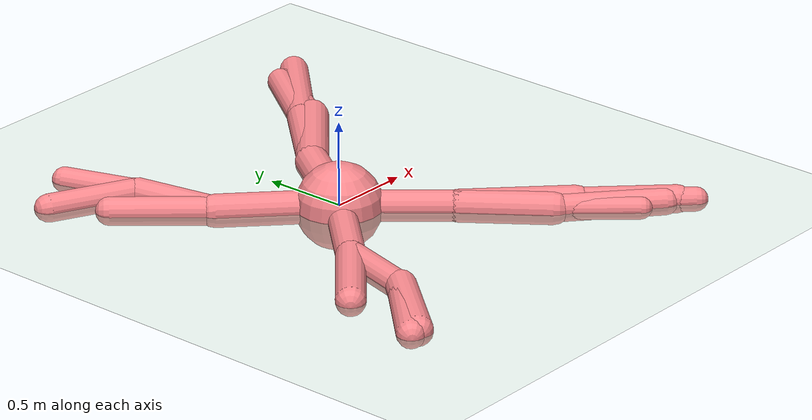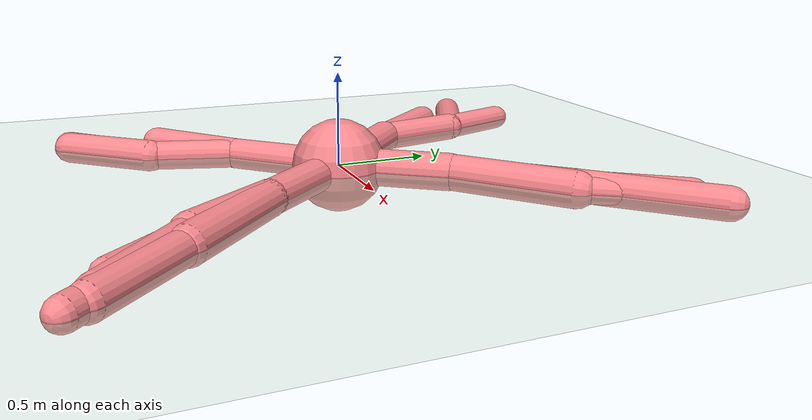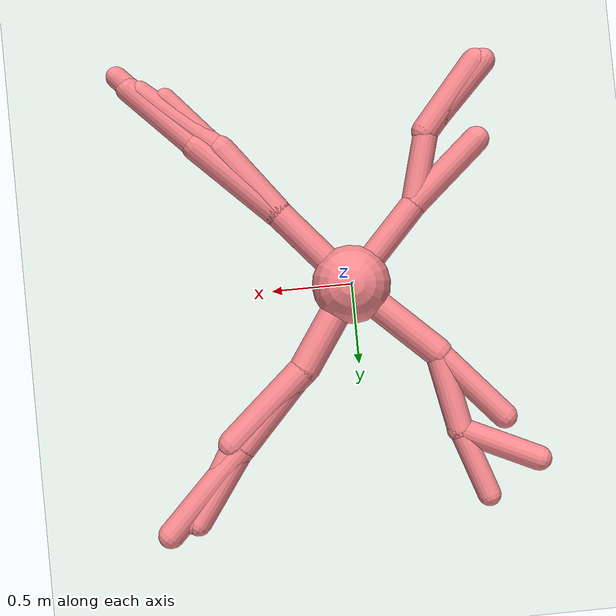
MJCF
<mujoco model="ant">
  <compiler angle="degree" coordinate="global" inertiafromgeom="true"/>
  <option integrator="RK4" timestep="0.01"/>
  <default>
    <joint armature="1" damping="1" limited="true"/>
    <geom conaffinity="0" condim="3" density="5.0" friction="1 0.5 0.5" margin="0.01" rgba=".98 .54 .56 1."/>
  </default>
  <visual>
    <headlight ambient=".1 .1 .1" diffuse=".6 .6 .6" specular="0.3 0.3 0.3"/>
    <map znear=".01"/>
    <quality shadowsize="16384"/>
  </visual>
  <worldbody>
    <light cutoff="100" diffuse="1 1 1" dir="-0 0 -1.3" directional="true" exponent="1" pos="0 0 1.3" specular=".1 .1 .1"/>
    <geom conaffinity="1" condim="3" name="floor" pos="0 0 0" rgba="0.8 0.9 0.8 1" size="200 200 .125" type="plane" material="grid_new"/>
    <body name="0" pos="0 0 0">
      <camera name="track" mode="trackcom" pos="0 -3 0.3" xyaxes="1 0 0 0 0 1"/>
      <geom pos="0 0 0" size="0.25" type="sphere"/>
      <joint armature="0" damping="0" limited="false" margin="0.01" name="0_joint" pos="0 0 0" type="free"/>
      <body name="1" pos="0 0 0">
        <joint axis="-0.707107 0.707107 0" name="1_joint" pos="0 0 0" range="-30 30" type="hinge"/>
        <geom fromto="-0.003574 -0.00518 0 0.344969 0.5 0" size="0.09954" type="capsule"/>
        <body name="11" pos="0.344969 0.5 0">
          <joint axis="-0.707107 0.707107 0" name="11_joint" pos="0.344969 0.5 0" range="-30 30" type="hinge"/>
          <geom fromto="0.344592 0.499599 0 0.780367 0.963429 0" size="0.0854" type="capsule"/>
          <body name="111" pos="0.780367 0.963429 0">
            <joint axis="-0.707107 0.707107 0" name="111_joint" pos="0.780367 0.963429 0" range="-30 30" type="hinge"/>
            <geom fromto="0.776637 0.959692 0 1.276485 1.460497 0" size="0.085123" type="capsule"/>
          </body>
          <body name="211" pos="0.780367 0.963429 0">
            <joint axis="-0.707107 0.707107 0" name="211_joint" pos="0.780367 0.963429 0" range="-30 30" type="hinge"/>
            <geom fromto="0.780274 0.963299 0 1.096845 1.406023 0" size="0.078373" type="capsule"/>
          </body>
        </body>
        <body name="21" pos="0.344969 0.5 0">
          <joint axis="-0.707107 0.707107 0" name="21_joint" pos="0.344969 0.5 0" range="-30 30" type="hinge"/>
          <geom fromto="0.34394 0.499101 0 0.838409 0.931368 0" size="0.096403" type="capsule"/>
          <body name="121" pos="0.838409 0.931368 0">
            <joint axis="-0.707107 0.707107 0" name="121_joint" pos="0.838409 0.931368 0" range="-30 30" type="hinge"/>
            <geom fromto="0.83497 0.925877 0 1.132953 1.401633 0" size="0.06874" type="capsule"/>
          </body>
        </body>
      </body>
      <body name="2" pos="0 0 0">
        <joint axis="-0.707107 -0.707107 0" name="2_joint" pos="0 0 0" range="-30 30" type="hinge"/>
        <geom fromto="0.000235 -0.000225 0 -0.499725 0.47824 0" size="0.094036" type="capsule"/>
        <body name="12" pos="-0.499725 0.47824 0">
          <joint axis="-0.707107 -0.707107 0" name="12_joint" pos="-0.499725 0.47824 0" range="-30 30" type="hinge"/>
          <geom fromto="-0.499509 0.477114 0 -0.59559 0.97823 0" size="0.082727" type="capsule"/>
          <body name="112" pos="-0.59559 0.97823 0">
            <joint axis="-0.707107 -0.707107 0" name="112_joint" pos="-0.59559 0.97823 0" range="-30 30" type="hinge"/>
            <geom fromto="-0.587798 0.974551 0 -1.070094 1.202238 0" size="0.08017" type="capsule"/>
          </body>
          <body name="212" pos="-0.59559 0.97823 0">
            <joint axis="-0.707107 -0.707107 0" name="212_joint" pos="-0.59559 0.97823 0" range="-30 30" type="hinge"/>
            <geom fromto="-0.595584 0.978212 0 -0.736344 1.397954 0" size="0.074039" type="capsule"/>
          </body>
        </body>
        <body name="22" pos="-0.499725 0.47824 0">
          <joint axis="-0.707107 -0.707107 0" name="22_joint" pos="-0.499725 0.47824 0" range="-30 30" type="hinge"/>
          <geom fromto="-0.49966 0.478164 0 -0.879454 0.916394 0" size="0.081335" type="capsule"/>
        </body>
      </body>
      <body name="3" pos="0 0 0">
        <joint axis="0.707107 -0.707107 0" name="3_joint" pos="0 0 0" range="-30 30" type="hinge"/>
        <geom fromto="0.007497 0.007895 0 -0.438828 -0.462088 0" size="0.085044" type="capsule"/>
        <body name="13" pos="-0.438828 -0.462088 0">
          <joint axis="0.707107 -0.707107 0" name="13_joint" pos="-0.438828 -0.462088 0" range="-30 30" type="hinge"/>
          <geom fromto="-0.438722 -0.461703 0 -0.56766 -0.929919 0" size="0.079388" type="capsule"/>
          <body name="113" pos="-0.56766 -0.929919 0">
            <joint axis="0.707107 -0.707107 0" name="113_joint" pos="-0.56766 -0.929919 0" range="-30 30" type="hinge"/>
            <geom fromto="-0.557932 -0.91866 0 -0.914366 -1.331196 0" size="0.087116" type="capsule"/>
          </body>
          <body name="213" pos="-0.56766 -0.929919 0">
            <joint axis="0.707107 -0.707107 0" name="213_joint" pos="-0.56766 -0.929919 0" range="-30 30" type="hinge"/>
            <geom fromto="-0.567597 -0.929856 0 -0.965987 -1.332297 0" size="0.080704" type="capsule"/>
          </body>
        </body>
        <body name="23" pos="-0.438828 -0.462088 0">
          <joint axis="0.707107 -0.707107 0" name="23_joint" pos="-0.438828 -0.462088 0" range="-30 30" type="hinge"/>
          <geom fromto="-0.437813 -0.461215 0 -0.875109 -0.837915 0" size="0.084355" type="capsule"/>
        </body>
      </body>
      <body name="4" pos="0 0 0">
        <joint axis="0.707107 0.707107 0" name="4_joint" pos="0 0 0" range="-30 30" type="hinge"/>
        <geom fromto="-0.000932 0.001097 0 0.422796 -0.49786 0" size="0.089045" type="capsule"/>
        <body name="14" pos="0.422796 -0.49786 0">
          <joint axis="0.707107 0.707107 0" name="14_joint" pos="0.422796 -0.49786 0" range="-30 30" type="hinge"/>
          <geom fromto="0.422742 -0.497806 0 0.894885 -0.964229 0" size="0.092775" type="capsule"/>
          <body name="114" pos="0.894885 -0.964229 0">
            <joint axis="0.707107 0.707107 0" name="114_joint" pos="0.894885 -0.964229 0" range="-30 30" type="hinge"/>
            <geom fromto="0.894338 -0.963649 0 1.353732 -1.45103 0" size="0.069585" type="capsule"/>
          </body>
          <body name="214" pos="0.894885 -0.964229 0">
            <joint axis="0.707107 0.707107 0" name="214_joint" pos="0.894885 -0.964229 0" range="-30 30" type="hinge"/>
            <geom fromto="0.894875 -0.96422 0 1.289783 -1.370357 0" size="0.080248" type="capsule"/>
          </body>
        </body>
        <body name="24" pos="0.422796 -0.49786 0">
          <joint axis="0.707107 0.707107 0" name="24_joint" pos="0.422796 -0.49786 0" range="-30 30" type="hinge"/>
          <geom fromto="0.422697 -0.497727 0 0.743742 -0.927646 0" size="0.093171" type="capsule"/>
          <body name="124" pos="0.743742 -0.927646 0">
            <joint axis="0.707107 0.707107 0" name="124_joint" pos="0.743742 -0.927646 0" range="-30 30" type="hinge"/>
            <geom fromto="0.742587 -0.926648 0 1.220508 -1.339663 0" size="0.077897" type="capsule"/>
          </body>
          <body name="224" pos="0.743742 -0.927646 0">
            <joint axis="0.707107 0.707107 0" name="224_joint" pos="0.743742 -0.927646 0" range="-30 30" type="hinge"/>
            <geom fromto="0.742861 -0.926637 0 1.060853 -1.29059 0" size="0.064214" type="capsule"/>
          </body>
        </body>
      </body>
    </body>
  </worldbody>
  <actuator>
    <motor ctrllimited="true" ctrlrange="-1.0 1.0" joint="1_joint" gear="161.193541" name="1_joint"/>
    <motor ctrllimited="true" ctrlrange="-1.0 1.0" joint="2_joint" gear="62.531822" name="2_joint"/>
    <motor ctrllimited="true" ctrlrange="-1.0 1.0" joint="3_joint" gear="47.454181" name="3_joint"/>
    <motor ctrllimited="true" ctrlrange="-1.0 1.0" joint="4_joint" gear="130.523391" name="4_joint"/>
    <motor ctrllimited="true" ctrlrange="-1.0 1.0" joint="11_joint" gear="90.932098" name="11_joint"/>
    <motor ctrllimited="true" ctrlrange="-1.0 1.0" joint="12_joint" gear="47.483767" name="12_joint"/>
    <motor ctrllimited="true" ctrlrange="-1.0 1.0" joint="13_joint" gear="26.839247" name="13_joint"/>
    <motor ctrllimited="true" ctrlrange="-1.0 1.0" joint="14_joint" gear="104.164769" name="14_joint"/>
    <motor ctrllimited="true" ctrlrange="-1.0 1.0" joint="21_joint" gear="20.079101" name="21_joint"/>
    <motor ctrllimited="true" ctrlrange="-1.0 1.0" joint="22_joint" gear="169.486814" name="22_joint"/>
    <motor ctrllimited="true" ctrlrange="-1.0 1.0" joint="23_joint" gear="201.09828" name="23_joint"/>
    <motor ctrllimited="true" ctrlrange="-1.0 1.0" joint="24_joint" gear="84.070886" name="24_joint"/>
    <motor ctrllimited="true" ctrlrange="-1.0 1.0" joint="111_joint" gear="46.84313" name="111_joint"/>
    <motor ctrllimited="true" ctrlrange="-1.0 1.0" joint="112_joint" gear="92.790702" name="112_joint"/>
    <motor ctrllimited="true" ctrlrange="-1.0 1.0" joint="113_joint" gear="66.623793" name="113_joint"/>
    <motor ctrllimited="true" ctrlrange="-1.0 1.0" joint="114_joint" gear="81.564304" name="114_joint"/>
    <motor ctrllimited="true" ctrlrange="-1.0 1.0" joint="211_joint" gear="27.183073" name="211_joint"/>
    <motor ctrllimited="true" ctrlrange="-1.0 1.0" joint="213_joint" gear="141.001288" name="213_joint"/>
    <motor ctrllimited="true" ctrlrange="-1.0 1.0" joint="214_joint" gear="135.434778" name="214_joint"/>
    <motor ctrllimited="true" ctrlrange="-1.0 1.0" joint="121_joint" gear="78.441033" name="121_joint"/>
    <motor ctrllimited="true" ctrlrange="-1.0 1.0" joint="124_joint" gear="99.344054" name="124_joint"/>
    <motor ctrllimited="true" ctrlrange="-1.0 1.0" joint="224_joint" gear="96.067564" name="224_joint"/>
    <motor ctrllimited="true" ctrlrange="-1.0 1.0" joint="212_joint" gear="127.351906" name="212_joint"/>
  </actuator>
  <asset>
    <texture type="skybox" builtin="gradient" rgb1=".4 .5 .6" rgb2="0 0 0" width="100" height="100"/>
    <texture builtin="flat" height="1278" mark="cross" markrgb="1 1 1" name="texgeom" random="0.01" rgb1="0.8 0.6 0.4" rgb2="0.8 0.6 0.4" type="cube" width="127"/>
    <texture builtin="checker" height="100" name="texplane" rgb1="0 0 0" rgb2="0.8 0.8 0.8" type="2d" width="100"/>
    <material name="MatPlane" reflectance="0.5" shininess="1" specular="1" texrepeat="60 60" texture="texplane"/>
    <material name="geom" texture="texgeom" texuniform="true"/>
    <texture name="grid_new" type="2d" builtin="checker" rgb1=".1 .3 .2" rgb2=".2 .4 .3" width="1000" height="1000" mark="none" markrgb=".8 .6 .4"/>
    <material name="grid_new" texture="grid_new" texrepeat="0.2 0.2" texuniform="true" reflectance=".2"/>
  </asset>
</mujoco>
